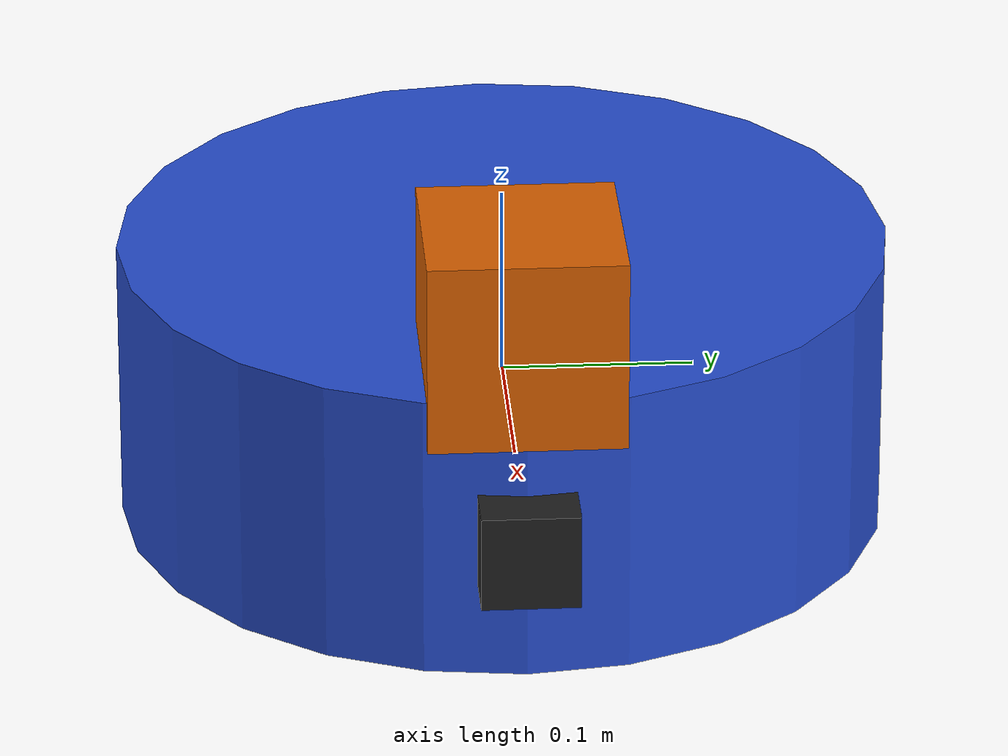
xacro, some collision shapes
<?xml version='1.0'?>
<robot name="my_robot" xmlns:xacro="http://www.ros.org/wiki/xacro">
<xacro:include filename="$(find my_robot)/urdf/my_robot.gazebo"/>
  <link name="robot_footprint"></link>

  <joint name="robot_footprint_joint" type="fixed">
    <origin xyz="0 0 0" rpy="0 0 0" />
    <parent link="robot_footprint"/>
    <child link="chassis" />
  </joint>

  <link name='chassis'>
    <pose>0 0 0.1 0 0 0</pose>
    <inertial>
      <mass value="20.0"/>
      <origin xyz="0.0 0 0" rpy=" 0 0 0"/>
      <inertia
          ixx="0.1" ixy="0" ixz="0"
          iyy="0.1" iyz="0"
          izz="0.1"
      />
    </inertial>

    <collision name='collision'>
      <origin xyz="0 0 0" rpy=" 0 0 0"/>
      <geometry>
        <cylinder radius="0.2" length="0.14"/>
      </geometry>
    </collision>

    <visual name='chassis_visual'>
      <origin xyz="0 0 0" rpy=" 0 0 0"/>
      <geometry>
        <cylinder radius="0.2" length="0.15"/>
      </geometry>
    </visual>

    <collision name='back_caster_collision'>
      <origin xyz="-0.08 0 -0.05" rpy=" 0 0 0"/>
      <geometry>
        <sphere radius="0.075"/>
      </geometry>
    </collision>

    <visual name='back_caster_visual'>
      <origin xyz="-0.08 0 -0.05" rpy=" 0 0 0"/>
      <geometry>
        <sphere radius="0.075"/>
      </geometry>
    </visual>

    <collision name='front_caster_collision'>
      <origin xyz="0.08 0 -0.05" rpy=" 0 0 0"/>
      <geometry>
        <sphere radius="0.075"/>
      </geometry>
    </collision>

    <visual name='front_caster_visual'>
      <origin xyz="0.08 0 -0.05" rpy=" 0 0 0"/>
      <geometry>
        <sphere radius="0.075"/>
      </geometry>
    </visual>

  </link>

  <link name='left_wheel'>
    <pose> 0 0 0 0 0 0</pose>
    <geometry>
        <cylinder size="0.1 0.05"/>
    </geometry>
    <inertial>
      <mass value="10.0"/>
      <origin xyz="0 0 0" rpy=" 0 1.5707 1.5707"/>
      <inertia
          ixx="0.1" ixy="0" ixz="0"
          iyy="0.1" iyz="0"
          izz="0.1"
      />
    </inertial>

    <collision name='left_wheel_collision'>
      <origin xyz="0 0 0" rpy=" 0 1.5707 1.5707"/>
      <geometry>
        <cylinder length="0.02"  radius="0.05"/>
      </geometry>
    </collision>

    <visual name='left_wheel_visual'>
      <origin xyz="0 0 0" rpy=" 0 1.5707 1.5707"/>
      <geometry>
        <cylinder length="0.02" radius="0.05"/>
      </geometry>
    </visual>
  </link>

  <joint type="continuous" name="left_wheel_hinge">
     <origin xyz="-0.03 0.15 -0.075" rpy="0 0 0"/>
     <child link="left_wheel"/>
     <parent link="chassis"/>
     <axis xyz="0 1 0" rpy="0 0 0"/>
     <limit effort="10000" velocity="1000"/>
     <dynamics damping="1.0" friction="1.0"/>
   </joint>

  <link name='right_wheel'>
    <pose> 0 0 0 0 0 0</pose>
    <geometry>
        <cylinder size="0.1 0.05"/>
    </geometry>
    <inertial>
      <mass value="10.0"/>
      <origin xyz="0 0 0" rpy=" 0 1.5707 1.5707"/>
      <inertia
          ixx="0.1" ixy="0" ixz="0"
          iyy="0.1" iyz="0"
          izz="0.1"
      />
    </inertial>
    <collision name='right_wheel_collision'>
      <origin xyz="0 0 0" rpy=" 0 1.5707 1.5707"/>
      <geometry>
        <cylinder length="0.02"  radius="0.05"/>
      </geometry>
    </collision>

    <visual name='right_wheel_visual'>
      <origin xyz="0 0 0" rpy=" 0 1.5707 1.5707"/>
      <geometry>
        <cylinder length="0.02"  radius="0.05"/>
      </geometry>
    </visual>
  </link>

  <joint type="continuous" name="right_wheel_hinge">
     <origin xyz="-0.03 -0.15 -0.075" rpy="0 0 0"/>
     <child link="right_wheel"/>
     <parent link="chassis"/>
     <axis xyz="0 1 0" rpy="0 0 0"/>
     <limit effort="10000" velocity="1000"/>
     <dynamics damping="1.0" friction="1.0"/>
   </joint>

<!-- Camera link -->
  <link name='camera'>
    <pose>0 0 0.1 0 0 0</pose>
    <geometry>
        <box size="0.05 0.05 0.05"/>
    </geometry>
    <inertial>
      <mass value="0.1"/>
      <origin xyz="0 0 0" rpy=" 0 0 0"/>
      <inertia
          ixx="1e-6" ixy="0" ixz="0"
          iyy="1e-6" iyz="0"
          izz="1e-6"
      />
    </inertial>
    <collision name='camera_collision'>
      <origin xyz="0 0 0" rpy=" 0 0 0"/>
      <geometry>
        <box size="0.05 0.05 0.05"/>
      </geometry>
    </collision>

    <visual name='camera_visual'>
      <origin xyz="0 0 0" rpy=" 0 0 0"/>
      <geometry>
        <box size="0.05 0.05 0.05"/>
      </geometry>
    </visual>
  </link>

  <joint type="fixed" name="camera_joint">
     <origin xyz="0.2 0 0" rpy="0 0 0"/>
     <child link="camera"/>
     <parent link="chassis"/>
     <axis xyz="0 1 0" rpy="0 0 0"/>
   </joint>
<!-- Hokuyo link -->
  <link name='hokuyo'>
    <pose>0 0 0.1 0 0 0</pose>
    <geometry>
        <box size="0.1 0.1 0.1"/>
    </geometry>
    <inertial>
      <mass value="1e-5"/>
      <origin xyz="0 0 0" rpy=" 0 0 0"/>
      <inertia
          ixx="1e-6" ixy="0" ixz="0"
          iyy="1e-6" iyz="0"
          izz="1e-6"
      />
    </inertial>
    <collision name='hokuyo_collision'>
      <origin xyz="0 0 0" rpy=" 0 0 0"/>
      <geometry>
        <box size="0.1 0.1 0.1"/>
      </geometry>
    </collision>

    <visual name='hokuyo_visual'>
      <origin xyz="0 0 0" rpy=" 0 0 0"/>
      <geometry>
        <mesh filename="package://my_robot/meshes/hokuyo.dae"/>
      </geometry>
    </visual>
   </link>

   <joint type="fixed" name="hokuyo_joint">
     <origin xyz="0.15 0 .1" rpy="0 0 0"/>
     <child link="hokuyo"/>
     <parent link="chassis"/>
     <axis xyz="0 1 0" rpy="0 0 0"/>
   </joint>

  <!-- Robot material/colour -->

  <gazebo reference="camera">
    <material>Gazebo/Black</material>
  </gazebo>
  <gazebo reference="chassis">
    <material>Gazebo/Blue</material>
  </gazebo>
  <gazebo reference="left_wheel">
    <material>Gazebo/Orange</material>
  </gazebo>
  <gazebo reference="right_wheel">
    <material>Gazebo/Orange</material>
  </gazebo>

</robot>
